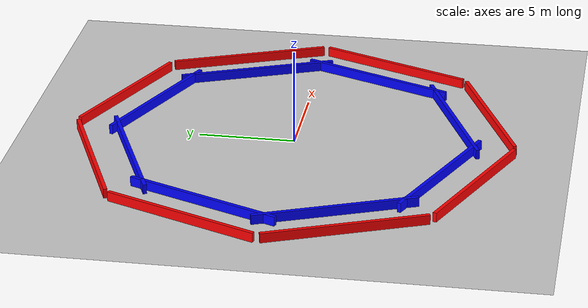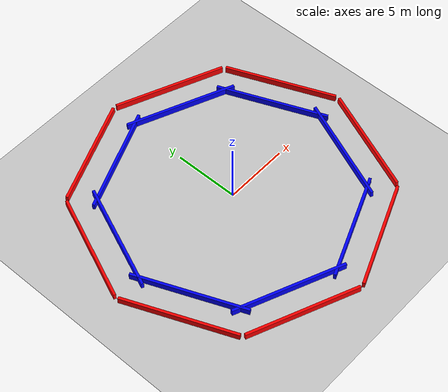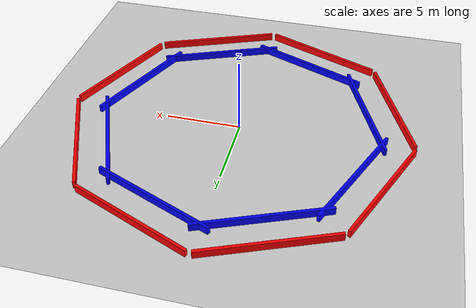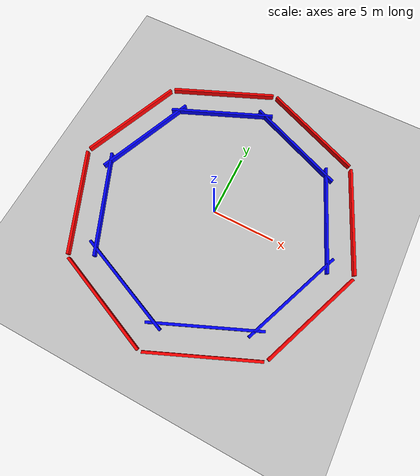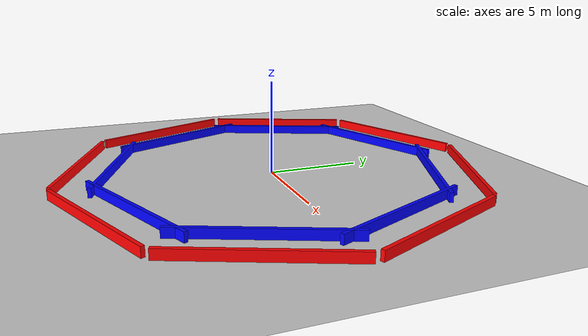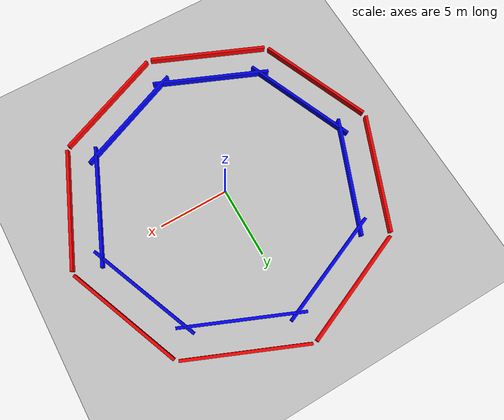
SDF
<?xml version="1.0" ?>
<sdf version="1.9">
  <world name="agentic_racer_track">
    <plugin filename="gz-sim-physics-system" name="gz::sim::systems::Physics"/>
    <plugin filename="gz-sim-user-commands-system" name="gz::sim::systems::UserCommands"/>
    <plugin filename="gz-sim-scene-broadcaster-system" name="gz::sim::systems::SceneBroadcaster"/>
    <plugin filename="gz-sim-sensors-system" name="gz::sim::systems::Sensors"><render_engine>ogre2</render_engine></plugin>
    <plugin filename="gz-sim-contact-system" name="gz::sim::systems::Contact"/>

    <light type="directional" name="sun">
      <cast_shadows>true</cast_shadows>
      <pose>0 0 10 0 0 0</pose>
      <diffuse>0.8 0.8 0.8 1</diffuse>
      <specular>0.2 0.2 0.2 1</specular>
      <attenuation><range>1000</range><constant>0.9</constant><linear>0.01</linear><quadratic>0.001</quadratic></attenuation>
      <direction>-0.5 0.1 -0.9</direction>
    </light>

    <model name="ground_plane">
      <static>true</static>
      <link name="link">
        <collision name="collision"><geometry><plane><normal>0 0 1</normal><size>200 200</size></plane></geometry></collision>
        <visual name="visual">
          <geometry><plane><normal>0 0 1</normal><size>200 200</size></plane></geometry>
          <material><ambient>0.8 0.8 0.8 1</ambient><diffuse>0.8 0.8 0.8 1</diffuse></material>
        </visual>
      </link>
    </model>

    <model name="track">
      <static>true</static>
      <!-- Edge 0 -->
      <link name="outer_0"><pose>9.84 4.08 0.25 0 0 1.9635</pose><collision name="col"><geometry><box><size>8.5 0.2 0.5</size></box></geometry></collision><visual name="vis"><geometry><box><size>8.5 0.2 0.5</size></box></geometry><material><ambient>1 0 0 1</ambient></material></visual></link>
      <link name="inner_0"><pose>8.0 3.32 0.25 0 0 1.9635</pose><collision name="col"><geometry><box><size>8.5 0.2 0.5</size></box></geometry></collision><visual name="vis"><geometry><box><size>8.5 0.2 0.5</size></box></geometry><material><ambient>0 0 1 1</ambient></material></visual></link>
      <!-- Edge 1 -->
      <link name="outer_1"><pose>4.08 9.84 0.25 0 0 2.7489</pose><collision name="col"><geometry><box><size>8.5 0.2 0.5</size></box></geometry></collision><visual name="vis"><geometry><box><size>8.5 0.2 0.5</size></box></geometry><material><ambient>1 0 0 1</ambient></material></visual></link>
      <link name="inner_1"><pose>3.32 8.0 0.25 0 0 2.7489</pose><collision name="col"><geometry><box><size>8.5 0.2 0.5</size></box></geometry></collision><visual name="vis"><geometry><box><size>8.5 0.2 0.5</size></box></geometry><material><ambient>0 0 1 1</ambient></material></visual></link>
      <!-- Edge 2 -->
      <link name="outer_2"><pose>-4.08 9.84 0.25 0 0 -2.7489</pose><collision name="col"><geometry><box><size>8.5 0.2 0.5</size></box></geometry></collision><visual name="vis"><geometry><box><size>8.5 0.2 0.5</size></box></geometry><material><ambient>1 0 0 1</ambient></material></visual></link>
      <link name="inner_2"><pose>-3.32 8.0 0.25 0 0 -2.7489</pose><collision name="col"><geometry><box><size>8.5 0.2 0.5</size></box></geometry></collision><visual name="vis"><geometry><box><size>8.5 0.2 0.5</size></box></geometry><material><ambient>0 0 1 1</ambient></material></visual></link>
      <!-- Edge 3 -->
      <link name="outer_3"><pose>-9.84 4.08 0.25 0 0 -1.9635</pose><collision name="col"><geometry><box><size>8.5 0.2 0.5</size></box></geometry></collision><visual name="vis"><geometry><box><size>8.5 0.2 0.5</size></box></geometry><material><ambient>1 0 0 1</ambient></material></visual></link>
      <link name="inner_3"><pose>-8.0 3.32 0.25 0 0 -1.9635</pose><collision name="col"><geometry><box><size>8.5 0.2 0.5</size></box></geometry></collision><visual name="vis"><geometry><box><size>8.5 0.2 0.5</size></box></geometry><material><ambient>0 0 1 1</ambient></material></visual></link>
      <!-- Edge 4 -->
      <link name="outer_4"><pose>-9.84 -4.08 0.25 0 0 -1.1781</pose><collision name="col"><geometry><box><size>8.5 0.2 0.5</size></box></geometry></collision><visual name="vis"><geometry><box><size>8.5 0.2 0.5</size></box></geometry><material><ambient>1 0 0 1</ambient></material></visual></link>
      <link name="inner_4"><pose>-8.0 -3.32 0.25 0 0 -1.1781</pose><collision name="col"><geometry><box><size>8.5 0.2 0.5</size></box></geometry></collision><visual name="vis"><geometry><box><size>8.5 0.2 0.5</size></box></geometry><material><ambient>0 0 1 1</ambient></material></visual></link>
      <!-- Edge 5 -->
      <link name="outer_5"><pose>-4.08 -9.84 0.25 0 0 -0.3927</pose><collision name="col"><geometry><box><size>8.5 0.2 0.5</size></box></geometry></collision><visual name="vis"><geometry><box><size>8.5 0.2 0.5</size></box></geometry><material><ambient>1 0 0 1</ambient></material></visual></link>
      <link name="inner_5"><pose>-3.32 -8.0 0.25 0 0 -0.3927</pose><collision name="col"><geometry><box><size>8.5 0.2 0.5</size></box></geometry></collision><visual name="vis"><geometry><box><size>8.5 0.2 0.5</size></box></geometry><material><ambient>0 0 1 1</ambient></material></visual></link>
      <!-- Edge 6 -->
      <link name="outer_6"><pose>4.08 -9.84 0.25 0 0 0.3927</pose><collision name="col"><geometry><box><size>8.5 0.2 0.5</size></box></geometry></collision><visual name="vis"><geometry><box><size>8.5 0.2 0.5</size></box></geometry><material><ambient>1 0 0 1</ambient></material></visual></link>
      <link name="inner_6"><pose>3.32 -8.0 0.25 0 0 0.3927</pose><collision name="col"><geometry><box><size>8.5 0.2 0.5</size></box></geometry></collision><visual name="vis"><geometry><box><size>8.5 0.2 0.5</size></box></geometry><material><ambient>0 0 1 1</ambient></material></visual></link>
      <!-- Edge 7 -->
      <link name="outer_7"><pose>9.84 -4.08 0.25 0 0 1.1781</pose><collision name="col"><geometry><box><size>8.5 0.2 0.5</size></box></geometry></collision><visual name="vis"><geometry><box><size>8.5 0.2 0.5</size></box></geometry><material><ambient>1 0 0 1</ambient></material></visual></link>
      <link name="inner_7"><pose>8.0 -3.32 0.25 0 0 1.1781</pose><collision name="col"><geometry><box><size>8.5 0.2 0.5</size></box></geometry></collision><visual name="vis"><geometry><box><size>8.5 0.2 0.5</size></box></geometry><material><ambient>0 0 1 1</ambient></material></visual></link>
    </model>
  </world>
</sdf>
